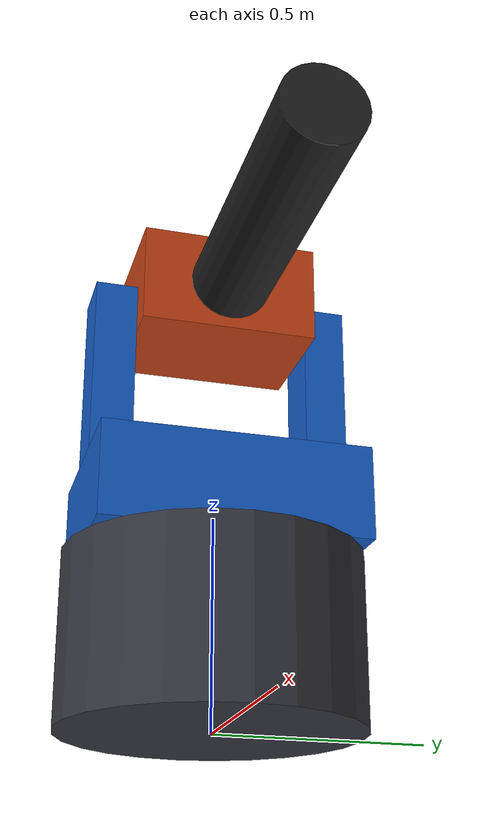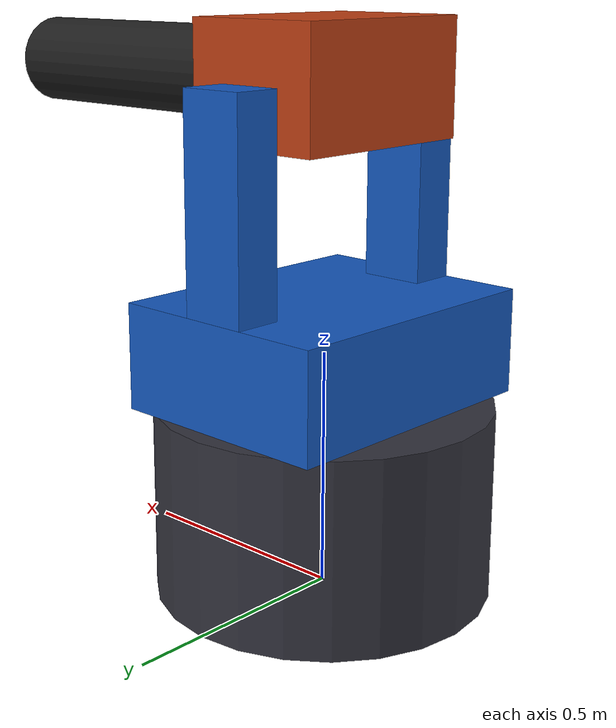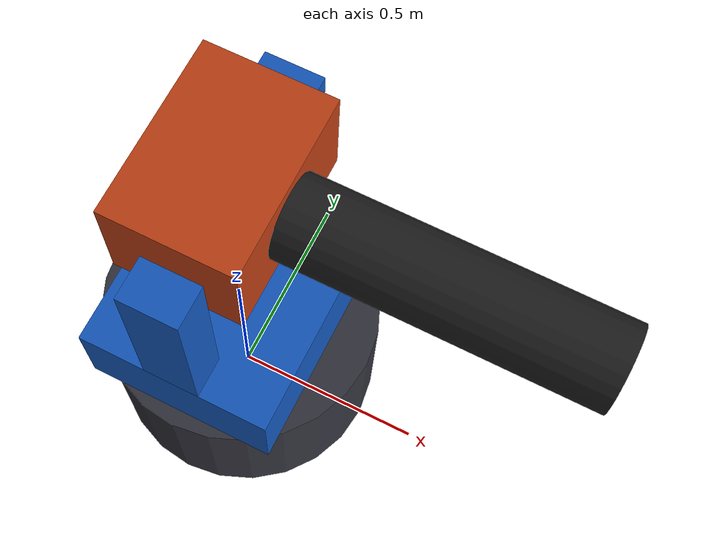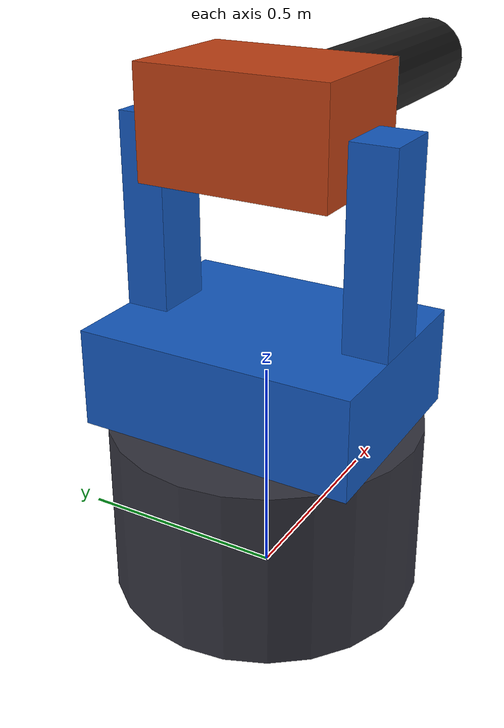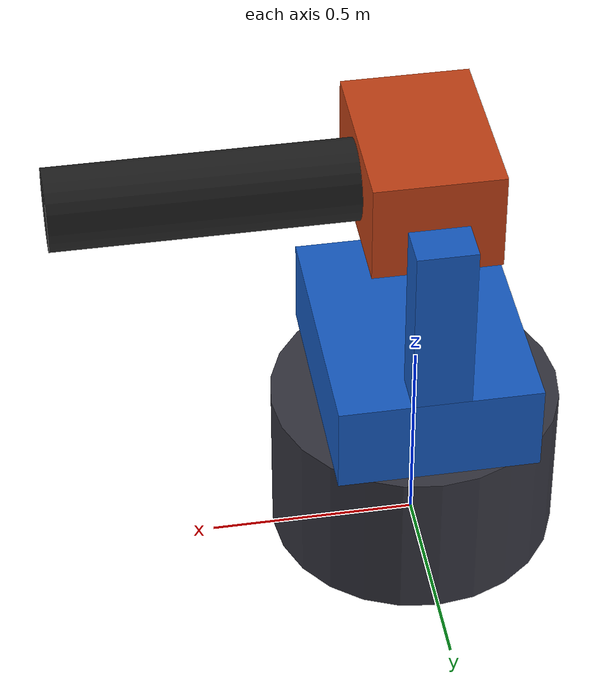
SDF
<?xml version="1.0"?>
<sdf version="1.9">
  <model name="ball_launcher">
    <canonical_link>base_link</canonical_link>
    <self_collide>false</self_collide>

    <!-- The base bottom is exactly at z=0. -->
    <link name="base_link">
      <pose>0 0 0.20 0 0 0</pose>
      <inertial>
        <mass>20.0</mass>
        <inertia>
          <ixx>0.40</ixx><iyy>0.40</iyy><izz>0.40</izz>
          <ixy>0</ixy><ixz>0</ixz><iyz>0</iyz>
        </inertia>
      </inertial>
      <visual name="base_visual">
        <geometry><cylinder><radius>0.35</radius><length>0.40</length></cylinder></geometry>
        <material><ambient>0.15 0.15 0.18 1</ambient><diffuse>0.20 0.20 0.24 1</diffuse></material>
      </visual>
      <collision name="base_collision">
        <geometry><cylinder><radius>0.35</radius><length>0.40</length></cylinder></geometry>
      </collision>
    </link>

    <joint name="world_fixed" type="fixed">
      <parent>world</parent>
      <child>base_link</child>
    </joint>

    <!-- Main pan block sits on the base. A tower fills the old vertical gap. -->
    <link name="pan_link">
      <pose>0 0 0.51 0 0 0</pose>
      <inertial>
        <mass>5.0</mass>
        <inertia>
          <ixx>0.18</ixx><iyy>0.18</iyy><izz>0.14</izz>
          <ixy>0</ixy><ixz>0</ixz><iyz>0</iyz>
        </inertia>
      </inertial>

      <visual name="pan_body_visual">
        <geometry><box><size>0.48 0.62 0.22</size></box></geometry>
        <material><ambient>0.05 0.25 0.55 1</ambient><diffuse>0.08 0.35 0.75 1</diffuse></material>
      </visual>
      <collision name="pan_body_collision">
        <geometry><box><size>0.48 0.62 0.22</size></box></geometry>
      </collision>

      <!-- U-shaped side supports: bottom z=0.62, top z=1.05. Their inner
           faces touch the tilt body sides at y=+/-0.21 even while it tilts. -->
      <visual name="left_support_visual">
        <pose>0 0.26 0.325 0 0 0</pose>
        <geometry><box><size>0.14 0.10 0.43</size></box></geometry>
        <material><ambient>0.05 0.25 0.55 1</ambient><diffuse>0.08 0.35 0.75 1</diffuse></material>
      </visual>
      <collision name="left_support_collision">
        <pose>0 0.26 0.325 0 0 0</pose>
        <geometry><box><size>0.14 0.10 0.43</size></box></geometry>
      </collision>

      <visual name="right_support_visual">
        <pose>0 -0.26 0.325 0 0 0</pose>
        <geometry><box><size>0.14 0.10 0.43</size></box></geometry>
        <material><ambient>0.05 0.25 0.55 1</ambient><diffuse>0.08 0.35 0.75 1</diffuse></material>
      </visual>
      <collision name="right_support_collision">
        <pose>0 -0.26 0.325 0 0 0</pose>
        <geometry><box><size>0.14 0.10 0.43</size></box></geometry>
      </collision>
    </link>

    <joint name="pan_joint" type="revolute">
      <pose relative_to="base_link">0 0 0.20 0 0 0</pose>
      <parent>base_link</parent>
      <child>pan_link</child>
      <axis>
        <xyz>0 0 1</xyz>
        <limit><lower>-3.14159</lower><upper>3.14159</upper><effort>200</effort><velocity>3.0</velocity></limit>
        <dynamics><damping>1.5</damping><friction>0.2</friction></dynamics>
      </axis>
    </joint>

    <!-- The tilt body is held between the two side supports at the hinge axis. -->
    <link name="tilt_link">
      <pose>0 0 1.05 0 0 0</pose>
      <inertial>
        <mass>3.0</mass>
        <inertia>
          <ixx>0.30</ixx><iyy>0.30</iyy><izz>0.08</izz>
          <ixy>0</ixy><ixz>0</ixz><iyz>0</iyz>
        </inertia>
      </inertial>

      <visual name="tilt_body_visual">
        <geometry><box><size>0.30 0.42 0.24</size></box></geometry>
        <material><ambient>0.55 0.18 0.05 1</ambient><diffuse>0.75 0.25 0.08 1</diffuse></material>
      </visual>
      <collision name="tilt_body_collision">
        <geometry><box><size>0.30 0.42 0.24</size></box></geometry>
      </collision>

      <visual name="barrel_visual">
        <pose>0.425 0 0 0 1.57079632679 0</pose>
        <geometry><cylinder><radius>0.095</radius><length>0.85</length></cylinder></geometry>
        <material><ambient>0.08 0.08 0.08 1</ambient><diffuse>0.12 0.12 0.12 1</diffuse></material>
      </visual>
      <collision name="barrel_collision">
        <pose>0.425 0 0 0 1.57079632679 0</pose>
        <geometry><cylinder><radius>0.095</radius><length>0.85</length></cylinder></geometry>
      </collision>
    </link>

    <joint name="tilt_joint" type="revolute">
      <parent>pan_link</parent>
      <child>tilt_link</child>
      <axis>
        <xyz>0 -1 0</xyz>
        <limit><lower>-0.10</lower><upper>1.31</upper><effort>180</effort><velocity>2.5</velocity></limit>
        <dynamics><damping>1.2</damping><friction>0.15</friction></dynamics>
      </axis>
    </joint>

    <plugin filename="gz-sim-joint-position-controller-system"
            name="gz::sim::systems::JointPositionController">
      <joint_name>pan_joint</joint_name>
      <topic>/pan_cmd</topic>
      <p_gain>65.0</p_gain>
      <i_gain>0.2</i_gain>
      <d_gain>8.0</d_gain>
      <cmd_max>3.14159</cmd_max>
      <cmd_min>-3.14159</cmd_min>
    </plugin>

    <plugin filename="gz-sim-joint-position-controller-system"
            name="gz::sim::systems::JointPositionController">
      <joint_name>tilt_joint</joint_name>
      <topic>/tilt_cmd</topic>
      <p_gain>70.0</p_gain>
      <i_gain>0.2</i_gain>
      <d_gain>9.0</d_gain>
      <cmd_max>1.31</cmd_max>
      <cmd_min>-0.10</cmd_min>
    </plugin>
  </model>
</sdf>
